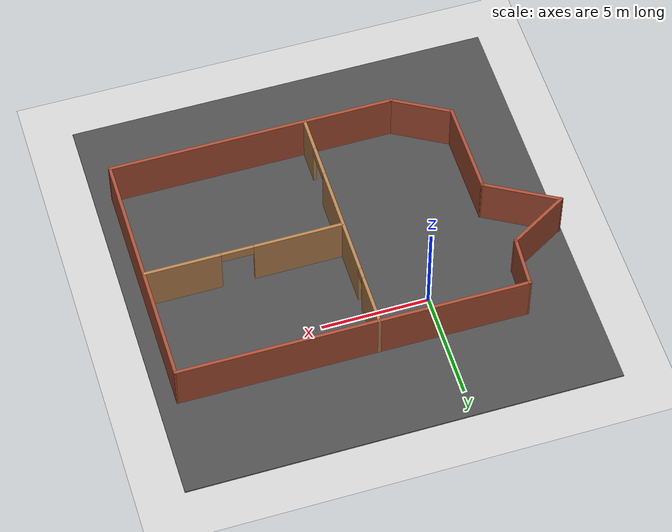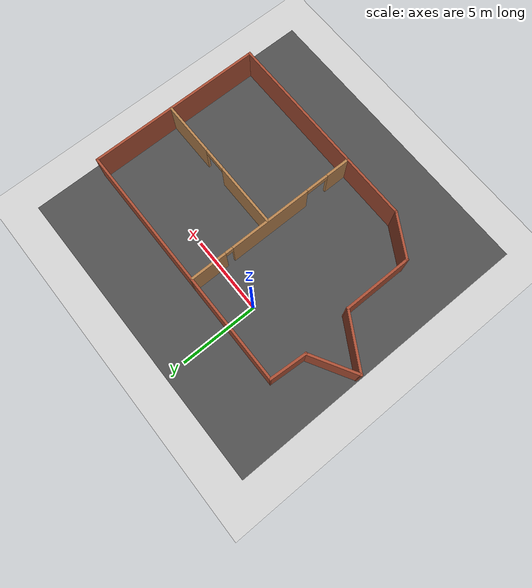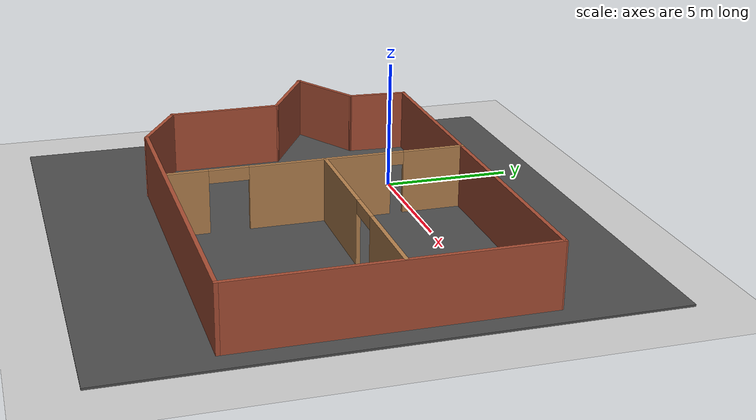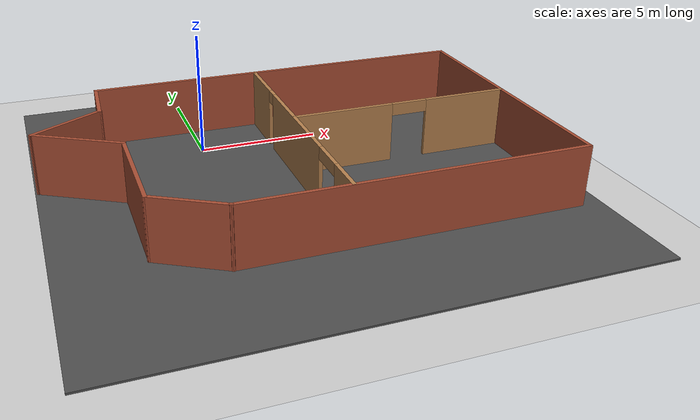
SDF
<sdf version="1.6">
 <world name="default">
  <light name="sun" type="directional">
   <pose>0 0 10 0 -0 0</pose>
   <diffuse>0.8 0.8 0.8 1</diffuse>
   <specular>0.2 0.2 0.2 1</specular>
   <attenuation>
    <range>1000</range>
    <constant>0.9</constant>
    <linear>0.01</linear>
    <quadratic>0.001</quadratic>
   </attenuation>
   <direction>-0.5 0.1 -0.9</direction>
  </light>
  <model name="ground_plane">
   <static>1</static>
   <link name="link">
    <collision name="collision">
     <geometry><plane><normal>0 0 1</normal><size>100 100</size></plane></geometry>
     <surface>
      <contact><collide_bitmask>65535</collide_bitmask></contact>
      <friction><ode><mu>100</mu><mu2>50</mu2></ode></friction>
     </surface>
    </collision>
    <visual name="visual">
     <cast_shadows>0</cast_shadows>
     <geometry><plane><normal>0 0 1</normal><size>100 100</size></plane></geometry>
     <material>
      <script><uri>file://media/materials/scripts/gazebo.material</uri><name>Gazebo/Grey</name></script>
     </material>
    </visual>
   </link>
  </model>
  <gravity>0 0 -9.8</gravity>
  <magnetic_field>6e-06 2.3e-05 -4.2e-05</magnetic_field>
  <atmosphere type="adiabatic"/>
  <physics name="default_physics" default="0" type="ode">
   <max_step_size>0.001</max_step_size>
   <real_time_factor>1</real_time_factor>
   <real_time_update_rate>1000</real_time_update_rate>
  </physics>
  <scene><ambient>0.4 0.4 0.4 1</ambient><background>0.7 0.7 0.7 1</background><shadows>1</shadows></scene>
  <spherical_coordinates>
   <surface_model>EARTH_WGS84</surface_model>
   <latitude_deg>0</latitude_deg>
   <longitude_deg>0</longitude_deg>
   <elevation>0</elevation>
   <heading_deg>0</heading_deg>
  </spherical_coordinates>
  <model name="Untitled">
   <pose>2.64057 -3.78127 0 0 -0 0</pose>
   <link name="Wall_17">
    <collision name="Wall_17_Collision">
     <geometry><box><size>13.5 0.15 2.5</size></box></geometry>
     <pose>0 0 1.25 0 -0 0</pose>
    </collision>
    <visual name="Wall_17_Visual">
     <pose>0 0 1.25 0 -0 0</pose>
     <geometry><box><size>13.5 0.15 2.5</size></box></geometry>
     <material>
      <script><uri>file://media/materials/scripts/gazebo.material</uri><name>Gazebo/Bricks</name></script>
      <ambient>1 1 1 1</ambient>
     </material>
     <meta><layer>0</layer></meta>
    </visual>
    <pose>2.80653 -5.69884 0 0 -0 3.14159</pose>
   </link>
   <link name="Wall_18">
    <collision name="Wall_18_Collision">
     <geometry><box><size>3 0.15 2.5</size></box></geometry>
     <pose>0 0 1.25 0 -0 0</pose>
    </collision>
    <visual name="Wall_18_Visual">
     <pose>0 0 1.25 0 -0 0</pose>
     <geometry><box><size>3 0.15 2.5</size></box></geometry>
     <material>
      <script><uri>file://media/materials/scripts/gazebo.material</uri><name>Gazebo/Bricks</name></script>
      <ambient>1 1 1 1</ambient>
     </material>
     <meta><layer>0</layer></meta>
    </visual>
    <pose>-5.10255 -4.98634 0 0 -0 2.61799</pose>
   </link>
   <link name="Wall_19">
    <collision name="Wall_19_Collision">
     <geometry><box><size>4.5 0.15 2.5</size></box></geometry>
     <pose>0 0 1.25 0 -0 0</pose>
    </collision>
    <visual name="Wall_19_Visual">
     <pose>0 0 1.25 0 -0 0</pose>
     <geometry><box><size>4.5 0.15 2.5</size></box></geometry>
     <material>
      <script><uri>file://media/materials/scripts/gazebo.material</uri><name>Gazebo/Bricks</name></script>
      <ambient>1 1 1 1</ambient>
     </material>
     <meta><layer>0</layer></meta>
    </visual>
    <pose>-6.33664 -2.09884 0 0 -0 1.5708</pose>
   </link>
   <link name="Wall_24">
    <collision name="Wall_24_Collision">
     <geometry><box><size>3.75 0.15 2.5</size></box></geometry>
     <pose>0 0 1.25 0 -0 0</pose>
    </collision>
    <visual name="Wall_24_Visual">
     <pose>0 0 1.25 0 -0 0</pose>
     <geometry><box><size>3.75 0.15 2.5</size></box></geometry>
     <material>
      <script><uri>file://media/materials/scripts/gazebo.material</uri><name>Gazebo/Bricks</name></script>
      <ambient>1 1 1 1</ambient>
     </material>
     <meta><layer>0</layer></meta>
    </visual>
    <pose>-7.89548 0.976164 0 0 -0 2.61799</pose>
   </link>
   <link name="Wall_25">
    <collision name="Wall_25_Collision">
     <geometry><box><size>3.25 0.15 2.5</size></box></geometry>
     <pose>0 0 1.25 0 -0 0</pose>
    </collision>
    <visual name="Wall_25_Visual">
     <pose>0 0 1.25 0 -0 0</pose>
     <geometry><box><size>3.25 0.15 2.5</size></box></geometry>
     <material>
      <script><uri>file://media/materials/scripts/gazebo.material</uri><name>Gazebo/Bricks</name></script>
      <ambient>1 1 1 1</ambient>
     </material>
     <meta><layer>0</layer></meta>
    </visual>
    <pose>-8.11199 2.65116 0 0 -0 0.523599</pose>
   </link>
   <link name="Wall_26">
    <collision name="Wall_26_Collision">
     <geometry><box><size>2.45033 0.15 2.5</size></box></geometry>
     <pose>0 0 1.25 0 -0 0</pose>
    </collision>
    <visual name="Wall_26_Visual">
     <pose>0 0 1.25 0 -0 0</pose>
     <geometry><box><size>2.45033 0.15 2.5</size></box></geometry>
     <material>
      <script><uri>file://media/materials/scripts/gazebo.material</uri><name>Gazebo/Bricks</name></script>
      <ambient>1 1 1 1</ambient>
     </material>
     <meta><layer>0</layer></meta>
    </visual>
    <pose>-6.69406 4.57384 0 0 -0 1.50503</pose>
   </link>
   <link name="Wall_28">
    <pose>0.296929 0.018484 0 0 -0 -1.5708</pose>
    <visual name="Wall_28_Visual_0">
     <pose>-4.53559 0 1.25 0 -0 0</pose>
     <geometry><box><size>2.42883 0.15 2.5</size></box></geometry>
     <material>
      <script><uri>file://media/materials/scripts/gazebo.material</uri><name>Gazebo/Wood</name></script>
      <ambient>1 1 1 1</ambient>
     </material>
     <meta><layer>0</layer></meta>
    </visual>
    <collision name="Wall_28_Collision_0">
     <geometry><box><size>2.42883 0.15 2.5</size></box></geometry>
     <pose>-4.53559 0 1.25 0 -0 0</pose>
    </collision>
    <visual name="Wall_28_Visual_1">
     <pose>-0.102976 0 1.25 0 -0 0</pose>
     <geometry><box><size>5.43639 0.15 2.5</size></box></geometry>
     <material>
      <script><uri>file://media/materials/scripts/gazebo.material</uri><name>Gazebo/Wood</name></script>
      <ambient>1 1 1 1</ambient>
     </material>
     <meta><layer>0</layer></meta>
    </visual>
    <collision name="Wall_28_Collision_1">
     <geometry><box><size>5.43639 0.15 2.5</size></box></geometry>
     <pose>-0.102976 0 1.25 0 -0 0</pose>
    </collision>
    <visual name="Wall_28_Visual_2">
     <pose>4.93261 0 1.25 0 -0 0</pose>
     <geometry><box><size>1.63478 0.15 2.5</size></box></geometry>
     <material>
      <script><uri>file://media/materials/scripts/gazebo.material</uri><name>Gazebo/Wood</name></script>
      <ambient>1 1 1 1</ambient>
     </material>
     <meta><layer>0</layer></meta>
    </visual>
    <collision name="Wall_28_Collision_2">
     <geometry><box><size>1.63478 0.15 2.5</size></box></geometry>
     <pose>4.93261 0 1.25 0 -0 0</pose>
    </collision>
    <visual name="Wall_28_Visual_3">
     <pose>-3.07117 0 2.25 0 -0 0</pose>
     <geometry><box><size>0.5 0.15 0.5</size></box></geometry>
     <material>
      <script><uri>file://media/materials/scripts/gazebo.material</uri><name>Gazebo/Wood</name></script>
      <ambient>1 1 1 1</ambient>
     </material>
     <meta><layer>0</layer></meta>
    </visual>
    <collision name="Wall_28_Collision_3">
     <geometry><box><size>0.5 0.15 0.5</size></box></geometry>
     <pose>-3.07117 0 2.25 0 -0 0</pose>
    </collision>
    <visual name="Wall_28_Visual_4">
     <pose>3.36522 0 2.25 0 -0 0</pose>
     <geometry><box><size>1.5 0.15 0.5</size></box></geometry>
     <material>
      <script><uri>file://media/materials/scripts/gazebo.material</uri><name>Gazebo/Wood</name></script>
      <ambient>1 1 1 1</ambient>
     </material>
     <meta><layer>0</layer></meta>
    </visual>
    <collision name="Wall_28_Collision_4">
     <geometry><box><size>1.5 0.15 0.5</size></box></geometry>
     <pose>3.36522 0 2.25 0 -0 0</pose>
    </collision>
   </link>
   <link name="Wall_30">
    <pose>4.88211 0.311133 0 0 -0 0</pose>
    <visual name="Wall_30_Visual_0">
     <pose>-2.52539 0 1.25 0 -0 0</pose>
     <geometry><box><size>4.19922 0.15 2.5</size></box></geometry>
     <material>
      <script><uri>file://media/materials/scripts/gazebo.material</uri><name>Gazebo/Wood</name></script>
      <ambient>1 1 1 1</ambient>
     </material>
     <meta><layer>0</layer></meta>
    </visual>
    <collision name="Wall_30_Collision_0">
     <geometry><box><size>4.19922 0.15 2.5</size></box></geometry>
     <pose>-2.52539 0 1.25 0 -0 0</pose>
    </collision>
    <visual name="Wall_30_Visual_1">
     <pose>2.84961 0 1.25 0 -0 0</pose>
     <geometry><box><size>3.55078 0.15 2.5</size></box></geometry>
     <material>
      <script><uri>file://media/materials/scripts/gazebo.material</uri><name>Gazebo/Wood</name></script>
      <ambient>1 1 1 1</ambient>
     </material>
     <meta><layer>0</layer></meta>
    </visual>
    <collision name="Wall_30_Collision_1">
     <geometry><box><size>3.55078 0.15 2.5</size></box></geometry>
     <pose>2.84961 0 1.25 0 -0 0</pose>
    </collision>
    <visual name="Wall_30_Visual_2">
     <pose>0.324221 0 2.25 0 -0 0</pose>
     <geometry><box><size>1.5 0.15 0.5</size></box></geometry>
     <material>
      <script><uri>file://media/materials/scripts/gazebo.material</uri><name>Gazebo/Wood</name></script>
      <ambient>1 1 1 1</ambient>
     </material>
     <meta><layer>0</layer></meta>
    </visual>
    <collision name="Wall_30_Collision_2">
     <geometry><box><size>1.5 0.15 0.5</size></box></geometry>
     <pose>0.324221 0 2.25 0 -0 0</pose>
    </collision>
   </link>
   <link name="Wall_8">
    <collision name="Wall_8_Collision">
     <geometry><box><size>16.25 0.15 2.5</size></box></geometry>
     <pose>0 0 1.25 0 -0 0</pose>
    </collision>
    <visual name="Wall_8_Visual">
     <pose>0 0 1.25 0 -0 0</pose>
     <geometry><box><size>16.25 0.15 2.5</size></box></geometry>
     <material>
      <script><uri>file://media/materials/scripts/gazebo.material</uri><name>Gazebo/Bricks</name></script>
      <ambient>1 1 1 1</ambient>
     </material>
     <meta><layer>0</layer></meta>
    </visual>
    <pose>1.43153 5.68634 0 0 -0 -0.00437</pose>
   </link>
   <link name="Wall_9">
    <collision name="Wall_9_Collision">
     <geometry><box><size>11.5 0.15 2.5</size></box></geometry>
     <pose>0 0 1.25 0 -0 0</pose>
    </collision>
    <visual name="Wall_9_Visual">
     <pose>0 0 1.25 0 -0 0</pose>
     <geometry><box><size>11.5 0.15 2.5</size></box></geometry>
     <material>
      <script><uri>file://media/materials/scripts/gazebo.material</uri><name>Gazebo/Bricks</name></script>
      <ambient>1 1 1 1</ambient>
     </material>
     <meta><layer>0</layer></meta>
    </visual>
    <pose>9.48153 -0.023836 0 0 -0 -1.5708</pose>
   </link>
   <static>1</static>
  </model>
  <model name="asphalt_plane">
   <static>1</static>
   <link name="link">
    <collision name="collision"><geometry><box><size>20 20 0.1</size></box></geometry></collision>
    <visual name="visual">
     <cast_shadows>0</cast_shadows>
     <geometry><box><size>20 20 0.1</size></box></geometry>
     <material>
      <script>
       <uri>model://asphalt_plane/materials/scripts</uri>
       <uri>model://asphalt_plane/materials/textures</uri>
       <name>vrc/asphalt</name>
      </script>
     </material>
    </visual>
   </link>
   <pose>3.01907 -3.69927 0 0 -0 0</pose>
  </model>
 </world>
</sdf>
